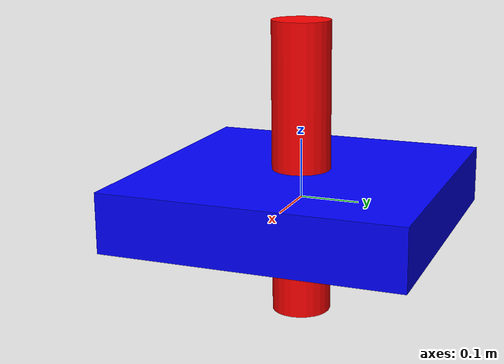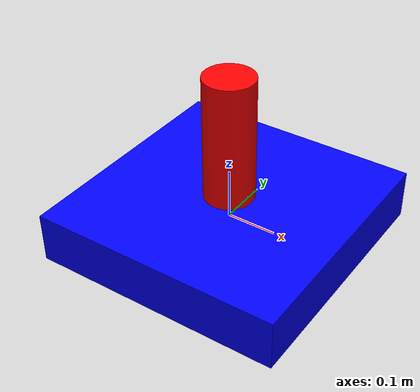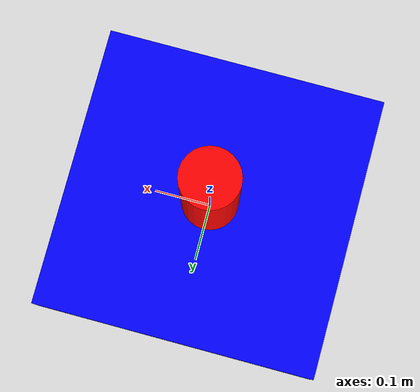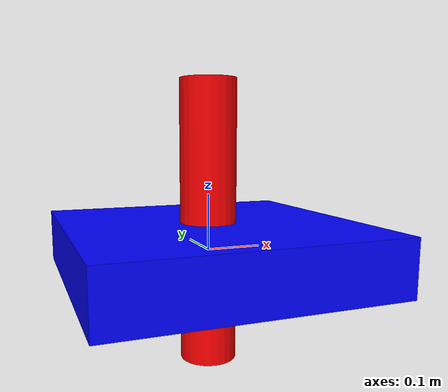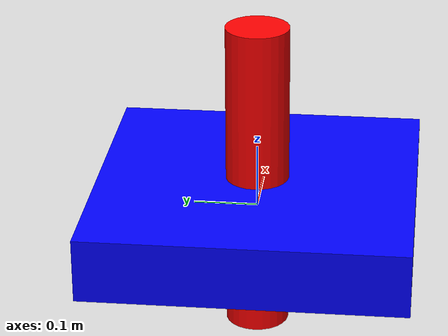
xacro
<?xml version="1.0"?>
<robot name="my_robot" xmlns:xacro="http://www.ros.org/wiki/xacro">
  <link name="base_link">
    <visual>
      <geometry>
        <box size="0.5 0.5 0.1"/>
      </geometry>
      <material name="blue">
        <color rgba="0 0 1 1"/>
      </material>
    </visual>
  </link>

  <link name="link1">
    <visual>
      <geometry>
        <cylinder length="0.5" radius="0.05"/>
      </geometry>
      <material name="red">
        <color rgba="1 0 0 1"/>
      </material>
    </visual>
  </link>

  <joint name="joint1" type="continuous">
    <parent link="base_link"/>
    <child link="link1"/>
    <origin xyz="0 0 0.05" rpy="0 0 0"/>
    <axis xyz="0 0 1"/>
  </joint>
</robot>
